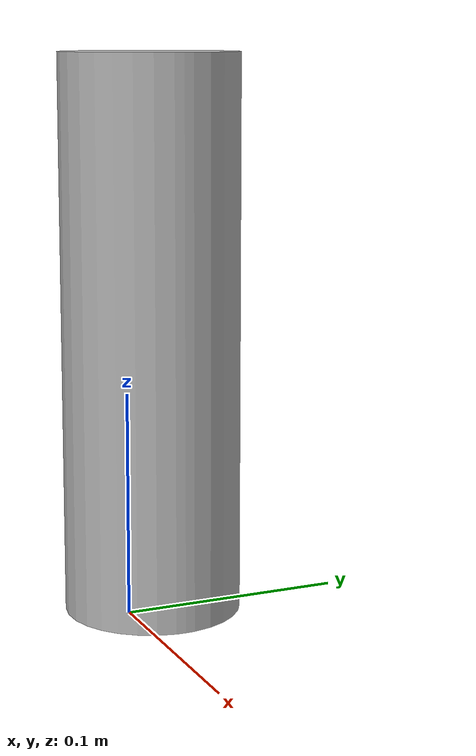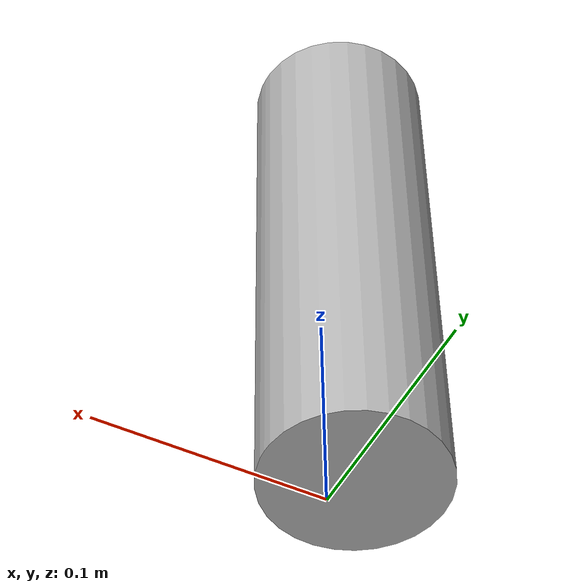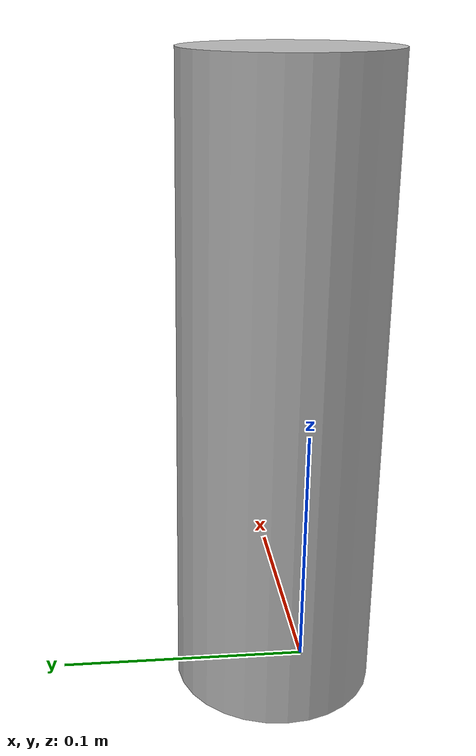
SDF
<?xml version="1.0" ?>
<sdf version="1.4">
  <model name="chips">
    <link name="link">
      <inertial>
        <pose>-0.005460 0.013500 0.123698 0 0 0</pose>
        <mass>0.2</mass>
        <inertia>
          <ixx>0.000156</ixx>
          <ixy>0</ixy>
          <ixz>0</ixz>
          <iyy>0.00061</iyy>
          <iyz>0</iyz>
          <izz>0.000648</izz>
        </inertia>
      </inertial>
      <visual name="chips">
        <pose>0 0 0 0 0 0</pose>
        <geometry>
          <mesh>
            <uri>model://chips/meshes/textured.obj</uri>
          </mesh>
        </geometry>
      </visual>
      <collision name="chips">
        <pose>0 0 0 0 0 0</pose>
        <geometry>
          <mesh>
            <uri>model://chips/meshes/nontextured_simple.stl</uri>
          </mesh>
        </geometry>
        <max_contacts>10</max_contacts>
        <surface>
          <bounce>
            <restitution_coefficient>0.2</restitution_coefficient>
            <threshold>0</threshold>
          </bounce>
          <friction>
            <ode/>
          </friction>
          <contact>
            <ode>
              <max_vel>10</max_vel>
            </ode>
          </contact>
        </surface>
      </collision>
      <velocity_decay>
        <linear>0</linear>
        <angular>0</angular>
      </velocity_decay>
      <self_collide>0</self_collide>
      <kinematic>0</kinematic>
      <gravity>1</gravity>
      <static>0</static>
    </link>
  </model>
</sdf>
